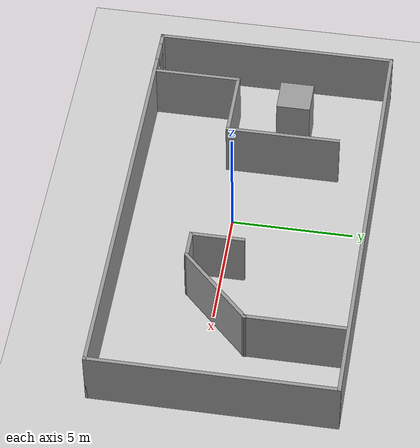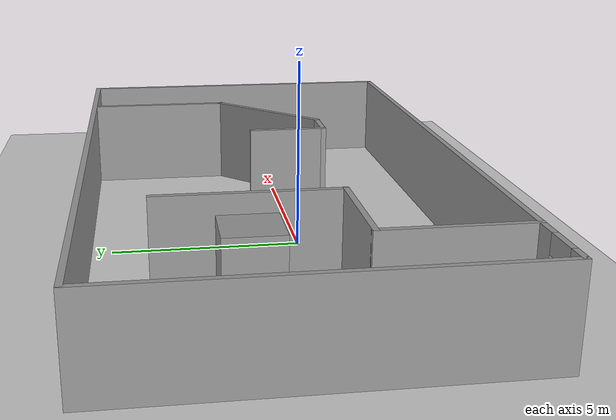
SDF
<sdf version="1.6">
 <world name="default">
  <model name="ground_plane">
   <static>1</static>
   <link name="link">
    <collision name="collision">
     <geometry><plane><size>100 100</size><normal>0 0 1</normal></plane></geometry>
     <surface><friction><ode><mu>100</mu><mu2>50</mu2></ode></friction></surface>
    </collision>
    <visual name="visual">
     <cast_shadows>0</cast_shadows>
     <geometry><plane><normal>0 0 1</normal><size>100 100</size></plane></geometry>
     <material>
      <script><uri>file://media/materials/scripts/gazebo.material</uri><name>Gazebo/Grey</name></script>
     </material>
    </visual>
   </link>
  </model>
  <light name="sun" type="directional">
   <pose>0 0 10 0 -0 0</pose>
   <diffuse>0.8 0.8 0.8 1</diffuse>
   <specular>0.1 0.1 0.1 1</specular>
   <attenuation>
    <range>1000</range>
    <constant>0.9</constant>
    <linear>0.01</linear>
    <quadratic>0.001</quadratic>
   </attenuation>
   <direction>-0.5 0.5 -1</direction>
  </light>
  <plugin name="ros_interface_plugin" filename="librotors_gazebo_ros_interface_plugin.so"/>
  <plugin name="gazebo_octomap" filename="librotors_gazebo_octomap_plugin.so"/>
  <spherical_coordinates>
   <surface_model>EARTH_WGS84</surface_model>
   <latitude_deg>47.3667</latitude_deg>
   <longitude_deg>8.55</longitude_deg>
   <elevation>500</elevation>
   <heading_deg>0</heading_deg>
  </spherical_coordinates>
  <physics name="default_physics" default="0" type="ode">
   <ode>
    <solver>
     <type>quick</type>
     <iters>1000</iters>
     <sor>1.3</sor>
     <use_dynamic_moi_rescaling>0</use_dynamic_moi_rescaling>
    </solver>
    <constraints>
     <cfm>0</cfm>
     <erp>0.2</erp>
     <contact_max_correcting_vel>100</contact_max_correcting_vel>
     <contact_surface_layer>0.001</contact_surface_layer>
    </constraints>
   </ode>
   <max_step_size>0.01</max_step_size>
   <real_time_factor>1</real_time_factor>
   <real_time_update_rate>100</real_time_update_rate>
  </physics>
  <gravity>0 0 -9.8</gravity>
  <magnetic_field>6e-06 2.3e-05 -4.2e-05</magnetic_field>
  <atmosphere type="adiabatic"/>
  <scene><ambient>0.4 0.4 0.4 1</ambient><background>0.7 0.7 0.7 1</background><shadows>1</shadows></scene>
  <model name="quad_world">
   <pose>0.90169 0.680429 0 0 -0 0</pose>
   <link name="Wall_0">
    <collision name="Wall_0_Collision">
     <geometry><box><size>10 0.15 2.5</size></box></geometry>
     <pose>0 0 1.25 0 -0 0</pose>
    </collision>
    <visual name="Wall_0_Visual">
     <pose>0 0 1.25 0 -0 0</pose>
     <geometry><box><size>10 0.15 2.5</size></box></geometry>
     <material>
      <script><uri>file://media/materials/scripts/gazebo.material</uri><name>Gazebo/Grey</name></script>
      <ambient>1 1 1 1</ambient>
     </material>
    </visual>
    <pose>-8.73828 0.003094 0 0 -0 1.5708</pose>
   </link>
   <link name="Wall_1">
    <collision name="Wall_1_Collision">
     <geometry><box><size>17.596 0.15 2.5</size></box></geometry>
     <pose>0 0 1.25 0 -0 0</pose>
    </collision>
    <visual name="Wall_1_Visual">
     <pose>0 0 1.25 0 -0 0</pose>
     <geometry><box><size>17.596 0.15 2.5</size></box></geometry>
     <material>
      <script><uri>file://media/materials/scripts/gazebo.material</uri><name>Gazebo/Grey</name></script>
      <ambient>1 1 1 1</ambient>
     </material>
    </visual>
    <pose>0.015295 4.92809 0 0 -0 0</pose>
   </link>
   <link name="Wall_10">
    <collision name="Wall_10_Collision">
     <geometry><box><size>4.75 0.15 2.5</size></box></geometry>
     <pose>0 0 1.25 0 -0 0</pose>
    </collision>
    <visual name="Wall_10_Visual">
     <pose>0 0 1.25 0 -0 0</pose>
     <geometry><box><size>4.75 0.15 2.5</size></box></geometry>
     <material>
      <script><uri>file://media/materials/scripts/gazebo.material</uri><name>Gazebo/Grey</name></script>
      <ambient>1 1 1 1</ambient>
     </material>
    </visual>
    <pose>-3.83511 0.971906 0 0 -0 1.5708</pose>
   </link>
   <link name="Wall_13">
    <collision name="Wall_13_Collision">
     <geometry><box><size>4.25 0.15 2.5</size></box></geometry>
     <pose>0 0 1.25 0 -0 0</pose>
    </collision>
    <visual name="Wall_13_Visual">
     <pose>0 0 1.25 0 -0 0</pose>
     <geometry><box><size>4.25 0.15 2.5</size></box></geometry>
     <material>
      <script><uri>file://media/materials/scripts/gazebo.material</uri><name>Gazebo/Grey</name></script>
      <ambient>1 1 1 1</ambient>
     </material>
    </visual>
    <pose>5.7957 2.87196 0 0 0 -1.5708</pose>
   </link>
   <link name="Wall_14">
    <collision name="Wall_14_Collision">
     <geometry><box><size>0.16 0.15 2.5</size></box></geometry>
     <pose>0 0 1.25 0 -0 0</pose>
    </collision>
    <visual name="Wall_14_Visual">
     <pose>0 0 1.25 0 -0 0</pose>
     <geometry><box><size>0.16 0.15 2.5</size></box></geometry>
     <material>
      <script><uri>file://media/materials/scripts/gazebo.material</uri><name>Gazebo/Grey</name></script>
      <ambient>1 1 1 1</ambient>
     </material>
    </visual>
    <pose>5.8007 0.821959 0 0 -0 0</pose>
   </link>
   <link name="Wall_15">
    <collision name="Wall_15_Collision">
     <geometry><box><size>4 0.15 2.5</size></box></geometry>
     <pose>0 0 1.25 0 -0 0</pose>
    </collision>
    <visual name="Wall_15_Visual">
     <pose>0 0 1.25 0 -0 0</pose>
     <geometry><box><size>4 0.15 2.5</size></box></geometry>
     <material>
      <script><uri>file://media/materials/scripts/gazebo.material</uri><name>Gazebo/Grey</name></script>
      <ambient>1 1 1 1</ambient>
     </material>
    </visual>
    <pose>4.44452 -0.539221 0 0 0 -2.35619</pose>
   </link>
   <link name="Wall_16">
    <collision name="Wall_16_Collision">
     <geometry><box><size>1.25 0.15 2.5</size></box></geometry>
     <pose>0 0 1.25 0 -0 0</pose>
    </collision>
    <visual name="Wall_16_Visual">
     <pose>0 0 1.25 0 -0 0</pose>
     <geometry><box><size>1.25 0.15 2.5</size></box></geometry>
     <material>
      <script><uri>file://media/materials/scripts/gazebo.material</uri><name>Gazebo/Grey</name></script>
      <ambient>1 1 1 1</ambient>
     </material>
    </visual>
    <pose>2.53334 -1.9004 0 0 -0 3.14159</pose>
   </link>
   <link name="Wall_17">
    <collision name="Wall_17_Collision">
     <geometry><box><size>2.25 0.15 2.5</size></box></geometry>
     <pose>0 0 1.25 0 -0 0</pose>
    </collision>
    <visual name="Wall_17_Visual">
     <pose>0 0 1.25 0 -0 0</pose>
     <geometry><box><size>2.25 0.15 2.5</size></box></geometry>
     <material>
      <script><uri>file://media/materials/scripts/gazebo.material</uri><name>Gazebo/Grey</name></script>
      <ambient>1 1 1 1</ambient>
     </material>
    </visual>
    <pose>1.98334 -0.850402 0 0 -0 1.5708</pose>
   </link>
   <link name="Wall_2">
    <collision name="Wall_2_Collision">
     <geometry><box><size>10 0.15 2.5</size></box></geometry>
     <pose>0 0 1.25 0 -0 0</pose>
    </collision>
    <visual name="Wall_2_Visual">
     <pose>0 0 1.25 0 -0 0</pose>
     <geometry><box><size>10 0.15 2.5</size></box></geometry>
     <material>
      <script><uri>file://media/materials/scripts/gazebo.material</uri><name>Gazebo/Grey</name></script>
      <ambient>1 1 1 1</ambient>
     </material>
    </visual>
    <pose>8.73828 0.003094 0 0 0 -1.5708</pose>
   </link>
   <link name="Wall_3">
    <pose>0.015295 -4.92191 0 0 -0 3.14159</pose>
    <visual name="Wall_3_Visual_0">
     <pose>-0.723166 0 1.25 0 -0 0</pose>
     <geometry><box><size>16.1496 0.15 2.5</size></box></geometry>
     <material>
      <script><uri>file://media/materials/scripts/gazebo.material</uri><name>Gazebo/Grey</name></script>
      <ambient>1 1 1 1</ambient>
     </material>
    </visual>
    <collision name="Wall_3_Collision_0">
     <geometry><box><size>16.1496 0.15 2.5</size></box></geometry>
     <pose>-0.723166 0 1.25 0 -0 0</pose>
    </collision>
    <visual name="Wall_3_Visual_1">
     <pose>8.52482 0 1.25 0 -0 0</pose>
     <geometry><box><size>0.546333 0.15 2.5</size></box></geometry>
     <material>
      <script><uri>file://media/materials/scripts/gazebo.material</uri><name>Gazebo/Grey</name></script>
      <ambient>1 1 1 1</ambient>
     </material>
    </visual>
    <collision name="Wall_3_Collision_1">
     <geometry><box><size>0.546333 0.15 2.5</size></box></geometry>
     <pose>8.52482 0 1.25 0 -0 0</pose>
    </collision>
    <visual name="Wall_3_Visual_2">
     <pose>7.80165 0 2.25 0 -0 0</pose>
     <geometry><box><size>0.9 0.15 0.5</size></box></geometry>
     <material>
      <script><uri>file://media/materials/scripts/gazebo.material</uri><name>Gazebo/Grey</name></script>
      <ambient>1 1 1 1</ambient>
     </material>
    </visual>
    <collision name="Wall_3_Collision_2">
     <geometry><box><size>0.9 0.15 0.5</size></box></geometry>
     <pose>7.80165 0 2.25 0 -0 0</pose>
    </collision>
   </link>
   <link name="Wall_8">
    <collision name="Wall_8_Collision">
     <geometry><box><size>3.75 0.15 2.5</size></box></geometry>
     <pose>0 0 1.25 0 -0 0</pose>
    </collision>
    <visual name="Wall_8_Visual">
     <pose>0 0 1.25 0 -0 0</pose>
     <geometry><box><size>3.75 0.15 2.5</size></box></geometry>
     <material>
      <script><uri>file://media/materials/scripts/gazebo.material</uri><name>Gazebo/Grey</name></script>
      <ambient>1 1 1 1</ambient>
     </material>
    </visual>
    <pose>-6.68511 -3.12809 0 0 -0 1.5708</pose>
   </link>
   <link name="Wall_9">
    <collision name="Wall_9_Collision">
     <geometry><box><size>3 0.15 2.5</size></box></geometry>
     <pose>0 0 1.25 0 -0 0</pose>
    </collision>
    <visual name="Wall_9_Visual">
     <pose>0 0 1.25 0 -0 0</pose>
     <geometry><box><size>3 0.15 2.5</size></box></geometry>
     <material>
      <script><uri>file://media/materials/scripts/gazebo.material</uri><name>Gazebo/Grey</name></script>
      <ambient>1 1 1 1</ambient>
     </material>
    </visual>
    <pose>-5.26011 -1.32809 0 0 -0 0</pose>
   </link>
   <static>1</static>
  </model>
  <model name="unit_box_0">
   <pose>-5.18085 1.86837 1.25 0 -0 0</pose>
   <link name="link">
    <inertial>
     <mass>1</mass>
     <inertia>
      <ixx>0.166667</ixx>
      <ixy>0</ixy>
      <ixz>0</ixz>
      <iyy>0.166667</iyy>
      <iyz>0</iyz>
      <izz>0.166667</izz>
     </inertia>
    </inertial>
    <collision name="collision"><geometry><box><size>1.4 1.4 2.5</size></box></geometry></collision>
    <visual name="visual">
     <geometry><box><size>1.4 1.4 2.5</size></box></geometry>
     <material>
      <script><name>Gazebo/Grey</name><uri>file://media/materials/scripts/gazebo.material</uri></script>
     </material>
    </visual>
   </link>
  </model>
 </world>
</sdf>
